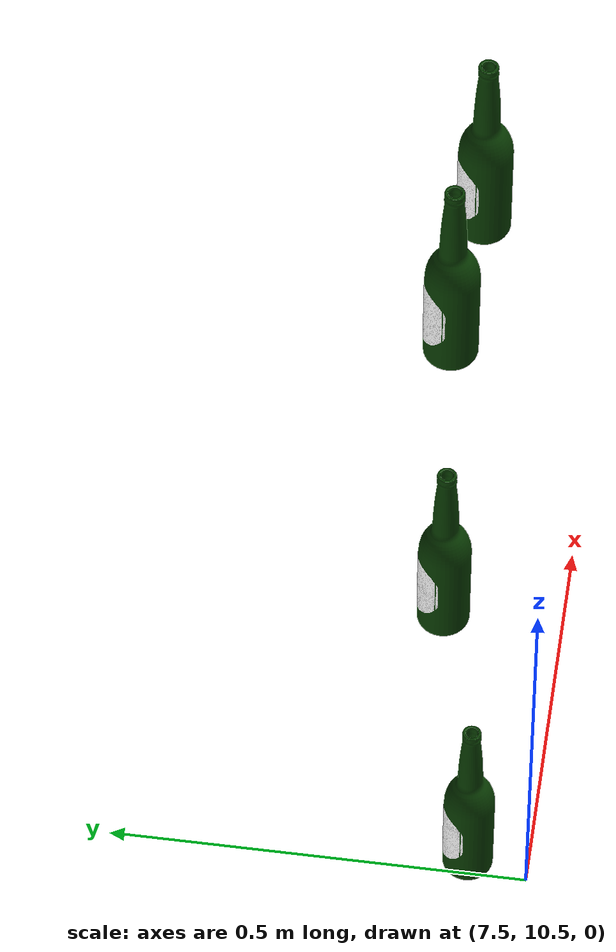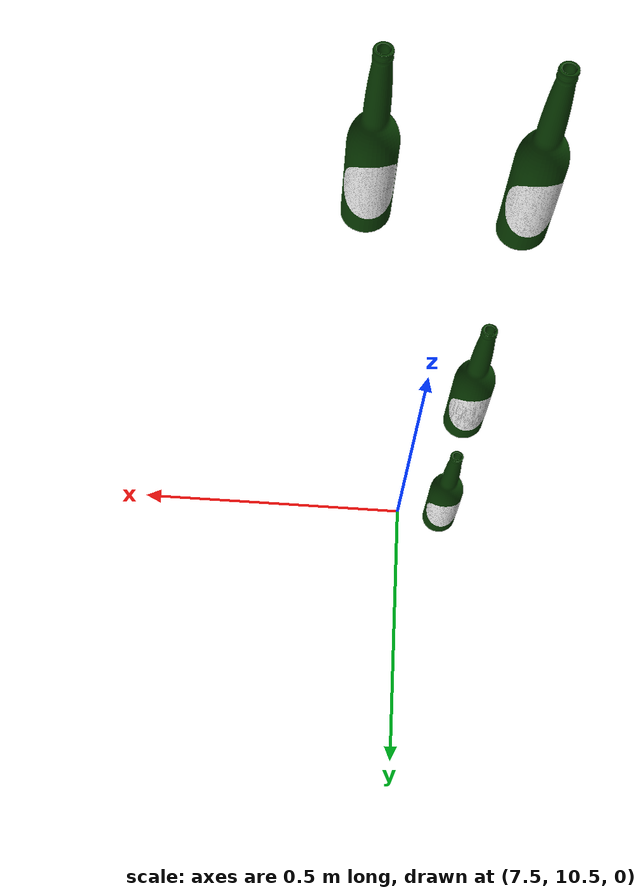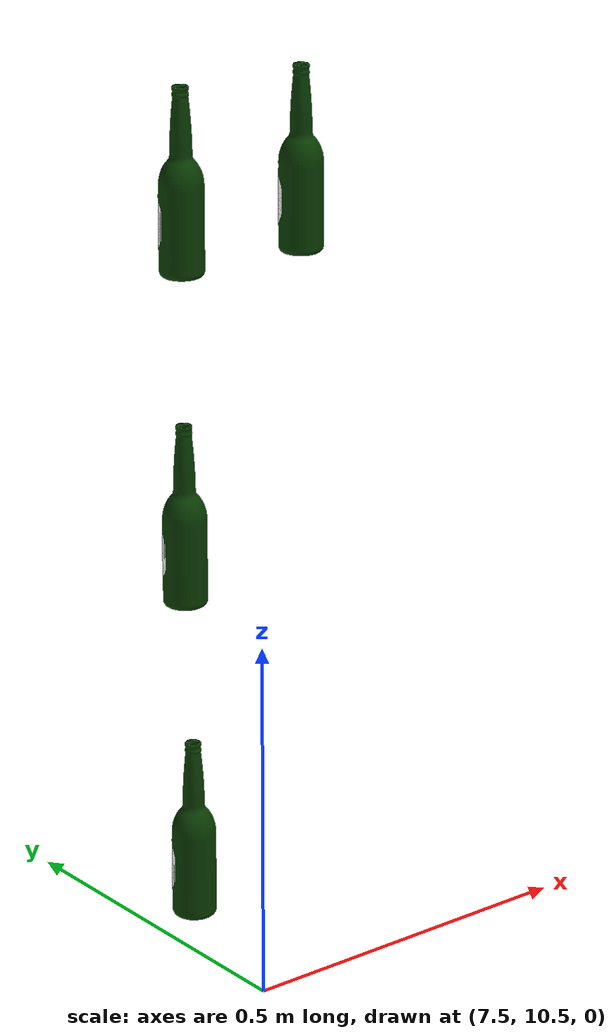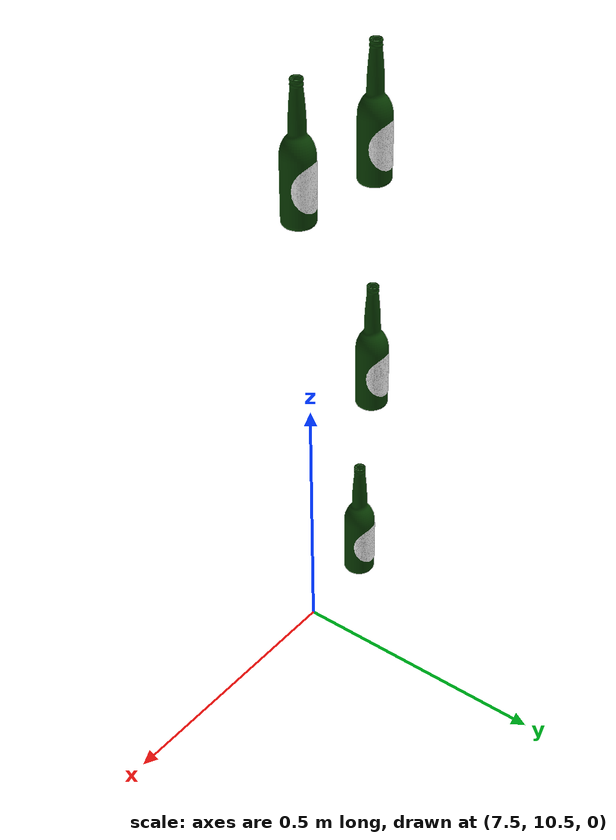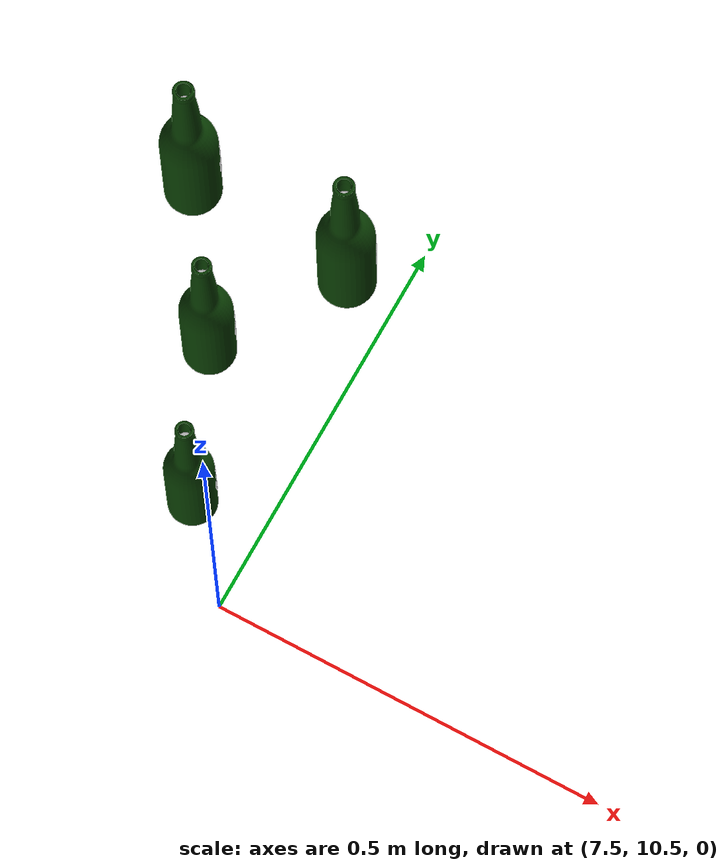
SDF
<sdf version="1.6">
 <world name="default">
  <model name="beer">
   <link name="link_5">
    <inertial>
     <mass>1</mass>
     <inertia>
      <ixx>0.166667</ixx>
      <ixy>0</ixy>
      <ixz>0</ixz>
      <iyy>0.166667</iyy>
      <iyz>0</iyz>
      <izz>0.166667</izz>
     </inertia>
    </inertial>
    <pose>2e-06 -2e-06 0 0 -0 0</pose>
    <visual name="visual">
     <geometry><mesh><uri>model://beer/meshes/beer.dae</uri><scale>0.02 0.02 0.02</scale></mesh></geometry>
    </visual>
    <collision name="collision">
     <geometry><mesh><uri>model://beer/meshes/beer.dae</uri><scale>0.02 0.02 0.02</scale></mesh></geometry>
     <surface>
      <friction>
       <ode><mu>1</mu><mu2>1</mu2><fdir1>0 0 0</fdir1><slip1>0</slip1><slip2>0</slip2></ode>
       <torsional>
        <coefficient>1</coefficient>
        <patch_radius>0</patch_radius>
        <surface_radius>0</surface_radius>
        <use_patch_radius>1</use_patch_radius>
        <ode><slip>0</slip></ode>
       </torsional>
      </friction>
      <bounce><restitution_coefficient>0</restitution_coefficient><threshold>1e+06</threshold></bounce>
      <contact>
       <collide_without_contact>0</collide_without_contact>
       <collide_without_contact_bitmask>1</collide_without_contact_bitmask>
       <collide_bitmask>1</collide_bitmask>
       <ode>
        <soft_cfm>0</soft_cfm>
        <soft_erp>0.2</soft_erp>
        <kp>1e+13</kp>
        <kd>1</kd>
        <max_vel>0.01</max_vel>
        <min_depth>0</min_depth>
       </ode>
       <bullet>
        <split_impulse>1</split_impulse>
        <split_impulse_penetration_threshold>-0.01</split_impulse_penetration_threshold>
        <soft_cfm>0</soft_cfm>
        <soft_erp>0.2</soft_erp>
        <kp>1e+13</kp>
        <kd>1</kd>
       </bullet>
      </contact>
     </surface>
    </collision>
   </link>
   <static>1</static>
   <pose>7.43088 10.5729 0.11809 0 -0 3.09779</pose>
  </model>
  <model name="beer_clone_0_clone_1">
   <link name="link_5">
    <inertial>
     <mass>1</mass>
     <inertia>
      <ixx>0.166667</ixx>
      <ixy>0</ixy>
      <ixz>0</ixz>
      <iyy>0.166667</iyy>
      <iyz>0</iyz>
      <izz>0.166667</izz>
     </inertia>
    </inertial>
    <pose>2e-06 -2e-06 0 0 -0 0</pose>
    <visual name="visual">
     <geometry><mesh><uri>model://beer/meshes/beer.dae</uri><scale>0.02 0.02 0.02</scale></mesh></geometry>
    </visual>
    <collision name="collision">
     <geometry><mesh><uri>model://beer/meshes/beer.dae</uri><scale>0.02 0.02 0.02</scale></mesh></geometry>
     <surface>
      <friction>
       <ode><mu>1</mu><mu2>1</mu2><fdir1>0 0 0</fdir1><slip1>0</slip1><slip2>0</slip2></ode>
       <torsional>
        <coefficient>1</coefficient>
        <patch_radius>0</patch_radius>
        <surface_radius>0</surface_radius>
        <use_patch_radius>1</use_patch_radius>
        <ode><slip>0</slip></ode>
       </torsional>
      </friction>
      <bounce><restitution_coefficient>0</restitution_coefficient><threshold>1e+06</threshold></bounce>
      <contact>
       <collide_without_contact>0</collide_without_contact>
       <collide_without_contact_bitmask>1</collide_without_contact_bitmask>
       <collide_bitmask>1</collide_bitmask>
       <ode>
        <soft_cfm>0</soft_cfm>
        <soft_erp>0.2</soft_erp>
        <kp>1e+13</kp>
        <kd>1</kd>
        <max_vel>0.01</max_vel>
        <min_depth>0</min_depth>
       </ode>
       <bullet>
        <split_impulse>1</split_impulse>
        <split_impulse_penetration_threshold>-0.01</split_impulse_penetration_threshold>
        <soft_cfm>0</soft_cfm>
        <soft_erp>0.2</soft_erp>
        <kp>1e+13</kp>
        <kd>1</kd>
       </bullet>
      </contact>
     </surface>
    </collision>
   </link>
   <static>1</static>
   <pose>7.44975 10.6113 0.54551 0 -0 3.09779</pose>
  </model>
  <model name="beer_clone_0_clone_3">
   <link name="link_5">
    <inertial>
     <mass>1</mass>
     <inertia>
      <ixx>0.166667</ixx>
      <ixy>0</ixy>
      <ixz>0</ixz>
      <iyy>0.166667</iyy>
      <iyz>0</iyz>
      <izz>0.166667</izz>
     </inertia>
    </inertial>
    <pose>2e-06 -2e-06 0 0 -0 0</pose>
    <visual name="visual">
     <geometry><mesh><uri>model://beer/meshes/beer.dae</uri><scale>0.02 0.02 0.02</scale></mesh></geometry>
    </visual>
    <collision name="collision">
     <geometry><mesh><uri>model://beer/meshes/beer.dae</uri><scale>0.02 0.02 0.02</scale></mesh></geometry>
     <surface>
      <friction>
       <ode><mu>1</mu><mu2>1</mu2><fdir1>0 0 0</fdir1><slip1>0</slip1><slip2>0</slip2></ode>
       <torsional>
        <coefficient>1</coefficient>
        <patch_radius>0</patch_radius>
        <surface_radius>0</surface_radius>
        <use_patch_radius>1</use_patch_radius>
        <ode><slip>0</slip></ode>
       </torsional>
      </friction>
      <bounce><restitution_coefficient>0</restitution_coefficient><threshold>1e+06</threshold></bounce>
      <contact>
       <collide_without_contact>0</collide_without_contact>
       <collide_without_contact_bitmask>1</collide_without_contact_bitmask>
       <collide_bitmask>1</collide_bitmask>
       <ode>
        <soft_cfm>0</soft_cfm>
        <soft_erp>0.2</soft_erp>
        <kp>1e+13</kp>
        <kd>1</kd>
        <max_vel>0.01</max_vel>
        <min_depth>0</min_depth>
       </ode>
       <bullet>
        <split_impulse>1</split_impulse>
        <split_impulse_penetration_threshold>-0.01</split_impulse_penetration_threshold>
        <soft_cfm>0</soft_cfm>
        <soft_erp>0.2</soft_erp>
        <kp>1e+13</kp>
        <kd>1</kd>
       </bullet>
      </contact>
     </surface>
    </collision>
   </link>
   <static>1</static>
   <pose>7.63143 10.5984 0.995664 0 -0 3.09779</pose>
  </model>
  <model name="beer_clone_0_clone_4">
   <link name="link_5">
    <inertial>
     <mass>1</mass>
     <inertia>
      <ixx>0.166667</ixx>
      <ixy>0</ixy>
      <ixz>0</ixz>
      <iyy>0.166667</iyy>
      <iyz>0</iyz>
      <izz>0.166667</izz>
     </inertia>
    </inertial>
    <pose>2e-06 -2e-06 0 0 -0 0</pose>
    <visual name="visual">
     <geometry><mesh><uri>model://beer/meshes/beer.dae</uri><scale>0.02 0.02 0.02</scale></mesh></geometry>
    </visual>
    <collision name="collision">
     <geometry><mesh><uri>model://beer/meshes/beer.dae</uri><scale>0.02 0.02 0.02</scale></mesh></geometry>
     <surface>
      <friction>
       <ode><mu>1</mu><mu2>1</mu2><fdir1>0 0 0</fdir1><slip1>0</slip1><slip2>0</slip2></ode>
       <torsional>
        <coefficient>1</coefficient>
        <patch_radius>0</patch_radius>
        <surface_radius>0</surface_radius>
        <use_patch_radius>1</use_patch_radius>
        <ode><slip>0</slip></ode>
       </torsional>
      </friction>
      <bounce><restitution_coefficient>0</restitution_coefficient><threshold>1e+06</threshold></bounce>
      <contact>
       <collide_without_contact>0</collide_without_contact>
       <collide_without_contact_bitmask>1</collide_without_contact_bitmask>
       <collide_bitmask>1</collide_bitmask>
       <ode>
        <soft_cfm>0</soft_cfm>
        <soft_erp>0.2</soft_erp>
        <kp>1e+13</kp>
        <kd>1</kd>
        <max_vel>0.01</max_vel>
        <min_depth>0</min_depth>
       </ode>
       <bullet>
        <split_impulse>1</split_impulse>
        <split_impulse_penetration_threshold>-0.01</split_impulse_penetration_threshold>
        <soft_cfm>0</soft_cfm>
        <soft_erp>0.2</soft_erp>
        <kp>1e+13</kp>
        <kd>1</kd>
       </bullet>
      </contact>
     </surface>
    </collision>
   </link>
   <static>1</static>
   <pose>7.44975 10.6113 0.995664 0 -0 3.09779</pose>
  </model>
 </world>
</sdf>
